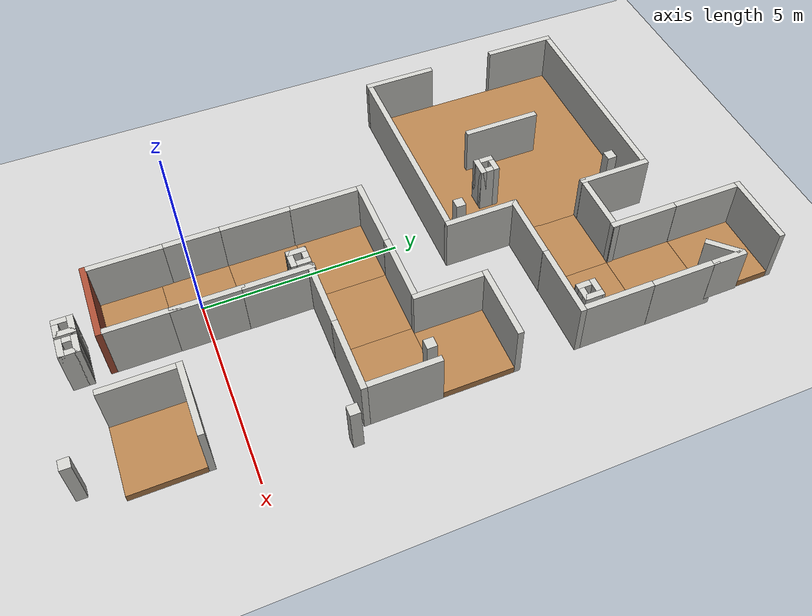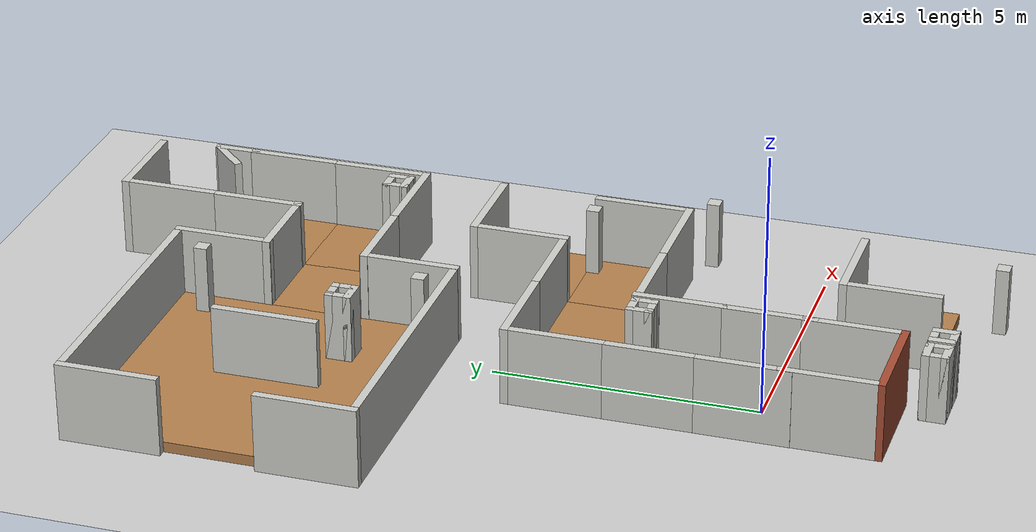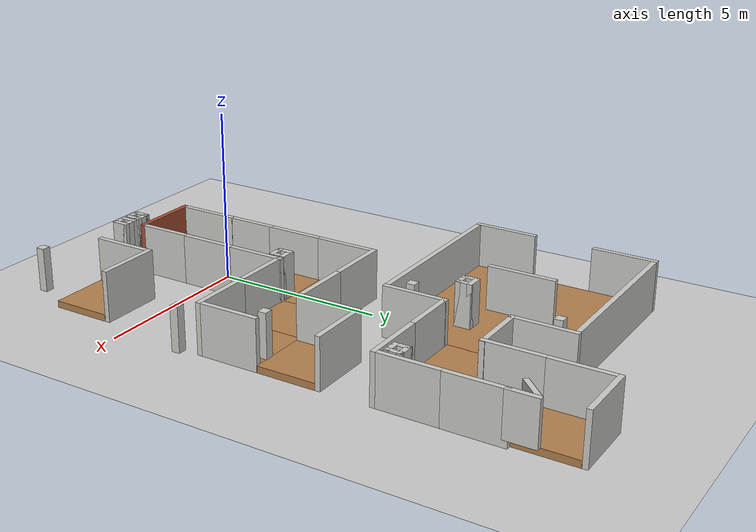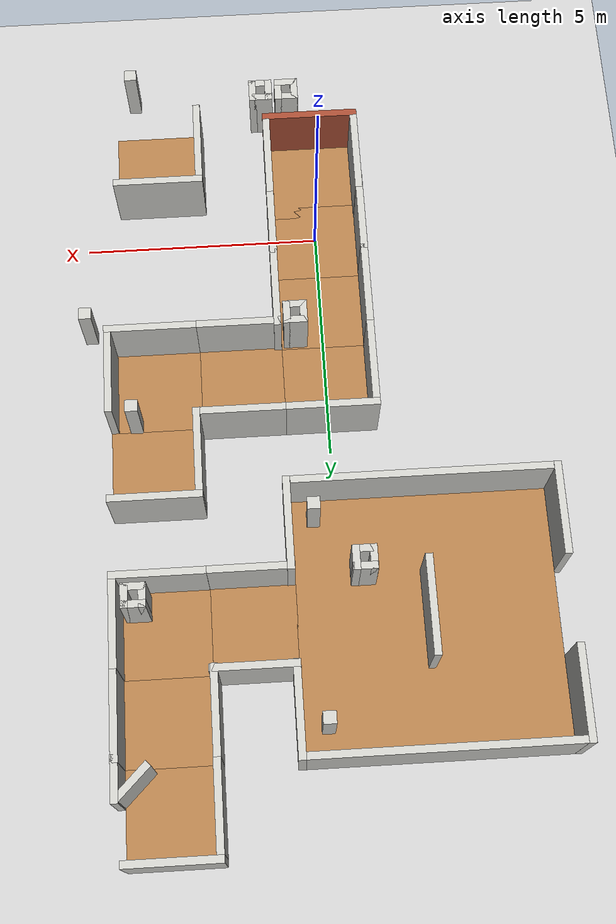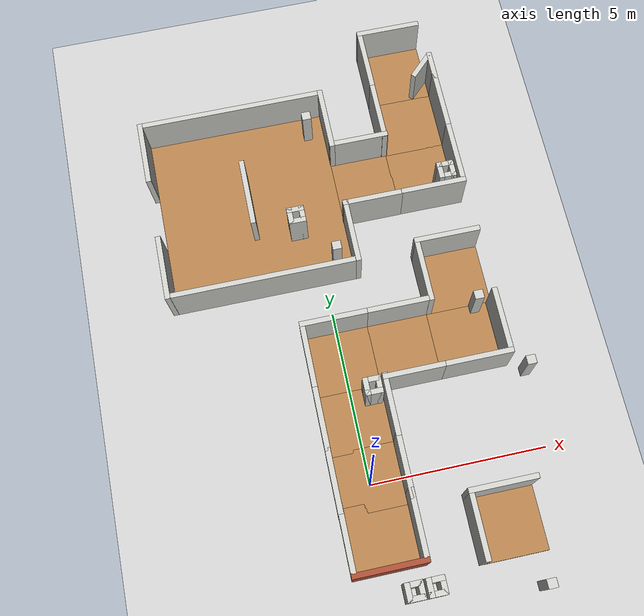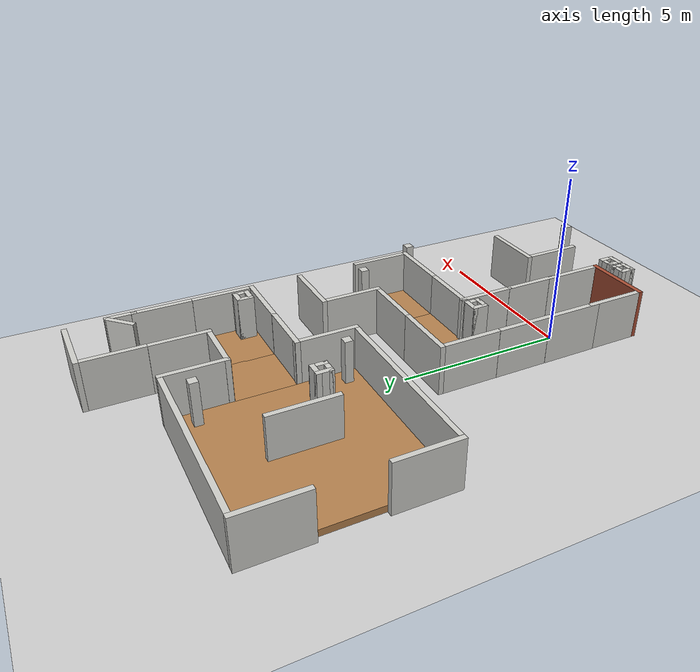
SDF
<sdf version="1.6">
 <world name="default">
  <model name="ground_plane">
   <static>1</static>
   <link name="link">
    <collision name="collision">
     <geometry><plane><normal>0 0 1</normal><size>100 100</size></plane></geometry>
     <surface><friction><ode><mu>100</mu><mu2>50</mu2></ode></friction></surface>
    </collision>
    <visual name="visual">
     <cast_shadows>0</cast_shadows>
     <geometry><plane><normal>0 0 1</normal><size>100 100</size></plane></geometry>
     <material>
      <script><uri>file://media/materials/scripts/gazebo.material</uri><name>Gazebo/Grey</name></script>
     </material>
    </visual>
   </link>
  </model>
  <model name="nerve_end">
   <pose>0 -1.42851 0 0 0 -3.14159</pose>
   <link name="Wall_0">
    <collision name="Wall_0_Collision">
     <geometry><box><size>1.76 1.75 0.2</size></box></geometry>
     <pose>0 0 0.1 0 -0 0</pose>
    </collision>
    <visual name="Wall_0_Visual">
     <pose>0 0 0.1 0 -0 0</pose>
     <geometry><box><size>1.76 1.75 0.2</size></box></geometry>
     <material>
      <script><uri>file://media/materials/scripts/gazebo.material</uri><name>Gazebo/Wood</name></script>
      <ambient>1 0.764706 0.305882 1</ambient>
     </material>
    </visual>
    <pose>-0.009 -0.064 0 0 -0 0</pose>
   </link>
   <link name="Wall_2">
    <collision name="Wall_2_Collision">
     <geometry><box><size>1.8 0.15 1.5</size></box></geometry>
     <pose>0 0 0.75 0 -0 0</pose>
    </collision>
    <visual name="Wall_2_Visual">
     <pose>0 0 0.75 0 -0 0</pose>
     <geometry><box><size>1.8 0.15 1.5</size></box></geometry>
     <material>
      <script><uri>file://media/materials/scripts/gazebo.material</uri><name>Gazebo/CeilingTiled</name></script>
      <ambient>1 0.764706 0.305882 1</ambient>
     </material>
    </visual>
    <pose>-0.95 -0.065 0 0 0 -1.5708</pose>
   </link>
   <link name="Wall_4">
    <collision name="Wall_4_Collision">
     <geometry><box><size>1.8 0.15 1.5</size></box></geometry>
     <pose>0 0 0.75 0 -0 0</pose>
    </collision>
    <visual name="Wall_4_Visual">
     <pose>0 0 0.75 0 -0 0</pose>
     <geometry><box><size>1.8 0.15 1.5</size></box></geometry>
     <material>
      <script><uri>file://media/materials/scripts/gazebo.material</uri><name>Gazebo/CeilingTiled</name></script>
      <ambient>1 0.764706 0.305882 1</ambient>
     </material>
    </visual>
    <pose>0.95 -0.065 0 0 0 -1.5708</pose>
   </link>
   <link name="Wall_6">
    <collision name="Wall_6_Collision">
     <geometry><box><size>2.05 0.15 1.5</size></box></geometry>
     <pose>0 0 0.75 0 -0 0</pose>
    </collision>
    <visual name="Wall_6_Visual">
     <pose>0 0 0.75 0 -0 0</pose>
     <geometry><box><size>2.05 0.15 1.5</size></box></geometry>
     <material>
      <script><uri>file://media/materials/scripts/gazebo.material</uri><name>Gazebo/Bricks</name></script>
      <ambient>0.996078 0.47451 0.0196078 1</ambient>
     </material>
    </visual>
    <pose>0 0.89 0 0 -0 0</pose>
   </link>
   <static>1</static>
  </model>
  <model name="nerve_straight_clone_0_clone_clone">
   <pose>0.002128 1.78513 0 0 -0 3.14159</pose>
   <link name="Wall_0">
    <collision name="Wall_0_Collision">
     <geometry><box><size>1.76 1.75 0.2</size></box></geometry>
     <pose>0 0 0.1 0 -0 0</pose>
    </collision>
    <visual name="Wall_0_Visual">
     <pose>0 0 0.1 0 -0 0</pose>
     <geometry><box><size>1.76 1.75 0.2</size></box></geometry>
     <material>
      <script><uri>file://media/materials/scripts/gazebo.material</uri><name>Gazebo/Wood</name></script>
      <ambient>1 0.764706 0.305882 1</ambient>
     </material>
    </visual>
    <pose>0.005 -0.002 0 0 -0 3.14159</pose>
   </link>
   <link name="Wall_2">
    <collision name="Wall_2_Collision">
     <geometry><box><size>1.75 0.15 1.5</size></box></geometry>
     <pose>0 0 0.75 0 -0 0</pose>
    </collision>
    <visual name="Wall_2_Visual">
     <pose>0 0 0.75 0 -0 0</pose>
     <geometry><box><size>1.75 0.15 1.5</size></box></geometry>
     <material>
      <script><uri>file://media/materials/scripts/gazebo.material</uri><name>Gazebo/CeilingTiled</name></script>
      <ambient>1 0.764706 0.305882 1</ambient>
     </material>
    </visual>
    <pose>-0.955 0.002 0 0 0 -1.5708</pose>
   </link>
   <link name="Wall_4">
    <collision name="Wall_4_Collision">
     <geometry><box><size>1.75 0.15 1.5</size></box></geometry>
     <pose>0 0 0.75 0 -0 0</pose>
    </collision>
    <visual name="Wall_4_Visual">
     <pose>0 0 0.75 0 -0 0</pose>
     <geometry><box><size>1.75 0.15 1.5</size></box></geometry>
     <material>
      <script><uri>file://media/materials/scripts/gazebo.material</uri><name>Gazebo/CeilingTiled</name></script>
      <ambient>1 0.764706 0.305882 1</ambient>
     </material>
    </visual>
    <pose>0.955 0.002 0 0 0 -1.5708</pose>
   </link>
   <static>1</static>
  </model>
  <model name="nerve_room_3x3_split">
   <pose>-1.72967 8.71628 0 0 0 -1.5708</pose>
   <link name="Wall_11">
    <collision name="Wall_11_Collision">
     <geometry><box><size>5.25 0.15 1.5</size></box></geometry>
     <pose>0 0 0.75 0 -0 0</pose>
    </collision>
    <visual name="Wall_11_Visual">
     <pose>0 0 0.75 0 -0 0</pose>
     <geometry><box><size>5.25 0.15 1.5</size></box></geometry>
     <material>
      <script><uri>file://media/materials/scripts/gazebo.material</uri><name>Gazebo/CeilingTiled</name></script>
      <ambient>1 0.764706 0.305882 1</ambient>
     </material>
    </visual>
    <pose>-2.69653 -0.003278 0 0 0 -1.5708</pose>
   </link>
   <link name="Wall_13">
    <collision name="Wall_13_Collision">
     <geometry><box><size>5.25 0.15 1.5</size></box></geometry>
     <pose>0 0 0.75 0 -0 0</pose>
    </collision>
    <visual name="Wall_13_Visual">
     <pose>0 0 0.75 0 -0 0</pose>
     <geometry><box><size>5.25 0.15 1.5</size></box></geometry>
     <material>
      <script><uri>file://media/materials/scripts/gazebo.material</uri><name>Gazebo/CeilingTiled</name></script>
      <ambient>1 0.764706 0.305882 1</ambient>
     </material>
    </visual>
    <pose>2.69688 -0.000452 0 0 0 -1.5708</pose>
   </link>
   <link name="Wall_15">
    <collision name="Wall_15_Collision">
     <geometry><box><size>1.9 0.15 1.5</size></box></geometry>
     <pose>0 0 0.75 0 -0 0</pose>
    </collision>
    <visual name="Wall_15_Visual">
     <pose>0 0 0.75 0 -0 0</pose>
     <geometry><box><size>1.9 0.15 1.5</size></box></geometry>
     <material>
      <script><uri>file://media/materials/scripts/gazebo.material</uri><name>Gazebo/CeilingTiled</name></script>
      <ambient>1 0.764706 0.305882 1</ambient>
     </material>
    </visual>
    <pose>-1.82279 -2.70217 0 0 -0 0</pose>
   </link>
   <link name="Wall_17">
    <collision name="Wall_17_Collision">
     <geometry><box><size>1.9 0.15 1.5</size></box></geometry>
     <pose>0 0 0.75 0 -0 0</pose>
    </collision>
    <visual name="Wall_17_Visual">
     <pose>0 0 0.75 0 -0 0</pose>
     <geometry><box><size>1.9 0.15 1.5</size></box></geometry>
     <material>
      <script><uri>file://media/materials/scripts/gazebo.material</uri><name>Gazebo/CeilingTiled</name></script>
      <ambient>1 0.764706 0.305882 1</ambient>
     </material>
    </visual>
    <pose>-1.82219 2.69878 0 0 -0 0</pose>
   </link>
   <link name="Wall_19">
    <collision name="Wall_19_Collision">
     <geometry><box><size>1.9 0.15 1.5</size></box></geometry>
     <pose>0 0 0.75 0 -0 0</pose>
    </collision>
    <visual name="Wall_19_Visual">
     <pose>0 0 0.75 0 -0 0</pose>
     <geometry><box><size>1.9 0.15 1.5</size></box></geometry>
     <material>
      <script><uri>file://media/materials/scripts/gazebo.material</uri><name>Gazebo/CeilingTiled</name></script>
      <ambient>1 0.764706 0.305882 1</ambient>
     </material>
    </visual>
    <pose>1.82194 2.70217 0 0 -0 0</pose>
   </link>
   <link name="Wall_21">
    <collision name="Wall_21_Collision">
     <geometry><box><size>1.9 0.15 1.5</size></box></geometry>
     <pose>0 0 0.75 0 -0 0</pose>
    </collision>
    <visual name="Wall_21_Visual">
     <pose>0 0 0.75 0 -0 0</pose>
     <geometry><box><size>1.9 0.15 1.5</size></box></geometry>
     <material>
      <script><uri>file://media/materials/scripts/gazebo.material</uri><name>Gazebo/CeilingTiled</name></script>
      <ambient>1 0.764706 0.305882 1</ambient>
     </material>
    </visual>
    <pose>1.82279 -2.70173 0 0 -0 0</pose>
   </link>
   <link name="Wall_23">
    <collision name="Wall_23_Collision">
     <geometry><box><size>2 0.15 1.5</size></box></geometry>
     <pose>0 0 0.75 0 -0 0</pose>
    </collision>
    <visual name="Wall_23_Visual">
     <pose>0 0 0.75 0 -0 0</pose>
     <geometry><box><size>2 0.15 1.5</size></box></geometry>
     <material>
      <script><uri>file://media/materials/scripts/gazebo.material</uri><name>Gazebo/CeilingTiled</name></script>
      <ambient>1 0.764706 0.305882 1</ambient>
     </material>
    </visual>
    <pose>0.033144 0.01482 0 0 -0 0</pose>
   </link>
   <link name="Wall_6">
    <collision name="Wall_6_Collision">
     <geometry><box><size>5.26 5.25 0.2</size></box></geometry>
     <pose>0 0 0.1 0 -0 0</pose>
    </collision>
    <visual name="Wall_6_Visual">
     <pose>0 0 0.1 0 -0 0</pose>
     <geometry><box><size>5.26 5.25 0.2</size></box></geometry>
     <material>
      <script><uri>file://media/materials/scripts/gazebo.material</uri><name>Gazebo/Wood</name></script>
      <ambient>1 0.764706 0.305882 1</ambient>
     </material>
    </visual>
    <pose>-0.001194 0.003047 0 0 -0 1.5708</pose>
   </link>
   <static>1</static>
  </model>
  <model name="nerve_corner">
   <pose>-0.067403 3.5803 0 0 -0 0</pose>
   <link name="Wall_0">
    <collision name="Wall_0_Collision">
     <geometry><box><size>1.76 1.75 0.2</size></box></geometry>
     <pose>0 0 0.1 0 -0 0</pose>
    </collision>
    <visual name="Wall_0_Visual">
     <pose>0 0 0.1 0 -0 0</pose>
     <geometry><box><size>1.76 1.75 0.2</size></box></geometry>
     <material>
      <script><uri>file://media/materials/scripts/gazebo.material</uri><name>Gazebo/Wood</name></script>
      <ambient>1 0.764706 0.305882 1</ambient>
     </material>
    </visual>
    <pose>0.077507 -0.077007 0 0 -0 3.14159</pose>
   </link>
   <link name="Wall_2">
    <collision name="Wall_2_Collision">
     <geometry><box><size>1.75 0.15 1.5</size></box></geometry>
     <pose>0 0 0.75 0 -0 0</pose>
    </collision>
    <visual name="Wall_2_Visual">
     <pose>0 0 0.75 0 -0 0</pose>
     <geometry><box><size>1.75 0.15 1.5</size></box></geometry>
     <material>
      <script><uri>file://media/materials/scripts/gazebo.material</uri><name>Gazebo/CeilingTiled</name></script>
      <ambient>1 0.764706 0.305882 1</ambient>
     </material>
    </visual>
    <pose>-0.882493 -0.073007 0 0 0 -1.5708</pose>
   </link>
   <link name="Wall_4">
    <collision name="Wall_4_Collision">
     <geometry><box><size>1.91042 0.15 1.5</size></box></geometry>
     <pose>0 0 0.75 0 -0 0</pose>
    </collision>
    <visual name="Wall_4_Visual">
     <pose>0 0 0.75 0 -0 0</pose>
     <geometry><box><size>1.91042 0.15 1.5</size></box></geometry>
     <material>
      <script><uri>file://media/materials/scripts/gazebo.material</uri><name>Gazebo/CeilingTiled</name></script>
      <ambient>1 0.764706 0.305882 1</ambient>
     </material>
    </visual>
    <pose>-0.002284 0.876825 0 0 -0 3.1414</pose>
   </link>
   <static>1</static>
  </model>
  <model name="nerve_straight_clone_0_clone_0">
   <pose>1.75611 3.50291 0 0 0 -1.5708</pose>
   <link name="Wall_0">
    <collision name="Wall_0_Collision">
     <geometry><box><size>1.76 1.75 0.2</size></box></geometry>
     <pose>0 0 0.1 0 -0 0</pose>
    </collision>
    <visual name="Wall_0_Visual">
     <pose>0 0 0.1 0 -0 0</pose>
     <geometry><box><size>1.76 1.75 0.2</size></box></geometry>
     <material>
      <script><uri>file://media/materials/scripts/gazebo.material</uri><name>Gazebo/Wood</name></script>
      <ambient>1 0.764706 0.305882 1</ambient>
     </material>
    </visual>
    <pose>0.005 -0.002 0 0 -0 3.14159</pose>
   </link>
   <link name="Wall_2">
    <collision name="Wall_2_Collision">
     <geometry><box><size>1.75 0.15 1.5</size></box></geometry>
     <pose>0 0 0.75 0 -0 0</pose>
    </collision>
    <visual name="Wall_2_Visual">
     <pose>0 0 0.75 0 -0 0</pose>
     <geometry><box><size>1.75 0.15 1.5</size></box></geometry>
     <material>
      <script><uri>file://media/materials/scripts/gazebo.material</uri><name>Gazebo/CeilingTiled</name></script>
      <ambient>1 0.764706 0.305882 1</ambient>
     </material>
    </visual>
    <pose>-0.955 0.002 0 0 0 -1.5708</pose>
   </link>
   <link name="Wall_4">
    <collision name="Wall_4_Collision">
     <geometry><box><size>1.75 0.15 1.5</size></box></geometry>
     <pose>0 0 0.75 0 -0 0</pose>
    </collision>
    <visual name="Wall_4_Visual">
     <pose>0 0 0.75 0 -0 0</pose>
     <geometry><box><size>1.75 0.15 1.5</size></box></geometry>
     <material>
      <script><uri>file://media/materials/scripts/gazebo.material</uri><name>Gazebo/CeilingTiled</name></script>
      <ambient>1 0.764706 0.305882 1</ambient>
     </material>
    </visual>
    <pose>0.955 0.002 0 0 0 -1.5708</pose>
   </link>
   <static>1</static>
  </model>
  <model name="nerve_corner_clone">
   <pose>3.58423 3.42479 0 0 0 -3.14159</pose>
   <link name="Wall_0">
    <collision name="Wall_0_Collision">
     <geometry><box><size>1.76 1.75 0.2</size></box></geometry>
     <pose>0 0 0.1 0 -0 0</pose>
    </collision>
    <visual name="Wall_0_Visual">
     <pose>0 0 0.1 0 -0 0</pose>
     <geometry><box><size>1.76 1.75 0.2</size></box></geometry>
     <material>
      <script><uri>file://media/materials/scripts/gazebo.material</uri><name>Gazebo/Wood</name></script>
      <ambient>1 0.764706 0.305882 1</ambient>
     </material>
    </visual>
    <pose>0.077507 -0.077007 0 0 -0 3.14159</pose>
   </link>
   <link name="Wall_2">
    <collision name="Wall_2_Collision">
     <geometry><box><size>1.75 0.15 1.5</size></box></geometry>
     <pose>0 0 0.75 0 -0 0</pose>
    </collision>
    <visual name="Wall_2_Visual">
     <pose>0 0 0.75 0 -0 0</pose>
     <geometry><box><size>1.75 0.15 1.5</size></box></geometry>
     <material>
      <script><uri>file://media/materials/scripts/gazebo.material</uri><name>Gazebo/CeilingTiled</name></script>
      <ambient>1 0.764706 0.305882 1</ambient>
     </material>
    </visual>
    <pose>-0.882493 -0.073007 0 0 0 -1.5708</pose>
   </link>
   <link name="Wall_4">
    <collision name="Wall_4_Collision">
     <geometry><box><size>1.91042 0.15 1.5</size></box></geometry>
     <pose>0 0 0.75 0 -0 0</pose>
    </collision>
    <visual name="Wall_4_Visual">
     <pose>0 0 0.75 0 -0 0</pose>
     <geometry><box><size>1.91042 0.15 1.5</size></box></geometry>
     <material>
      <script><uri>file://media/materials/scripts/gazebo.material</uri><name>Gazebo/CeilingTiled</name></script>
      <ambient>1 0.764706 0.305882 1</ambient>
     </material>
    </visual>
    <pose>-0.002284 0.876825 0 0 -0 3.1414</pose>
   </link>
   <static>1</static>
  </model>
  <model name="nerve_straight_clone_0_clone_0_clone">
   <pose>1.7644 8.71443 0 0 0 -1.5708</pose>
   <link name="Wall_0">
    <collision name="Wall_0_Collision">
     <geometry><box><size>1.76 1.75 0.2</size></box></geometry>
     <pose>0 0 0.1 0 -0 0</pose>
    </collision>
    <visual name="Wall_0_Visual">
     <pose>0 0 0.1 0 -0 0</pose>
     <geometry><box><size>1.76 1.75 0.2</size></box></geometry>
     <material>
      <script><uri>file://media/materials/scripts/gazebo.material</uri><name>Gazebo/Wood</name></script>
      <ambient>1 0.764706 0.305882 1</ambient>
     </material>
    </visual>
    <pose>0.005 -0.002 0 0 -0 3.14159</pose>
   </link>
   <link name="Wall_2">
    <collision name="Wall_2_Collision">
     <geometry><box><size>1.75 0.15 1.5</size></box></geometry>
     <pose>0 0 0.75 0 -0 0</pose>
    </collision>
    <visual name="Wall_2_Visual">
     <pose>0 0 0.75 0 -0 0</pose>
     <geometry><box><size>1.75 0.15 1.5</size></box></geometry>
     <material>
      <script><uri>file://media/materials/scripts/gazebo.material</uri><name>Gazebo/CeilingTiled</name></script>
      <ambient>1 0.764706 0.305882 1</ambient>
     </material>
    </visual>
    <pose>-0.955 0.002 0 0 0 -1.5708</pose>
   </link>
   <link name="Wall_4">
    <collision name="Wall_4_Collision">
     <geometry><box><size>1.75 0.15 1.5</size></box></geometry>
     <pose>0 0 0.75 0 -0 0</pose>
    </collision>
    <visual name="Wall_4_Visual">
     <pose>0 0 0.75 0 -0 0</pose>
     <geometry><box><size>1.75 0.15 1.5</size></box></geometry>
     <material>
      <script><uri>file://media/materials/scripts/gazebo.material</uri><name>Gazebo/CeilingTiled</name></script>
      <ambient>1 0.764706 0.305882 1</ambient>
     </material>
    </visual>
    <pose>0.955 0.002 0 0 0 -1.5708</pose>
   </link>
   <static>1</static>
  </model>
  <model name="nerve_corner_clone_clone_clone_clone_clone">
   <pose>3.33735 -1.74493 0 0 -0 4e-06</pose>
   <link name="Wall_0">
    <collision name="Wall_0_Collision">
     <geometry><box><size>1.76 1.75 0.2</size></box></geometry>
     <pose>0 0 0.1 0 -0 0</pose>
    </collision>
    <visual name="Wall_0_Visual">
     <pose>0 0 0.1 0 -0 0</pose>
     <geometry><box><size>1.76 1.75 0.2</size></box></geometry>
     <material>
      <script><uri>file://media/materials/scripts/gazebo.material</uri><name>Gazebo/Wood</name></script>
      <ambient>1 0.764706 0.305882 1</ambient>
     </material>
    </visual>
    <pose>0.077507 -0.077007 0 0 -0 3.14159</pose>
   </link>
   <link name="Wall_2">
    <collision name="Wall_2_Collision">
     <geometry><box><size>1.75 0.15 1.5</size></box></geometry>
     <pose>0 0 0.75 0 -0 0</pose>
    </collision>
    <visual name="Wall_2_Visual">
     <pose>0 0 0.75 0 -0 0</pose>
     <geometry><box><size>1.75 0.15 1.5</size></box></geometry>
     <material>
      <script><uri>file://media/materials/scripts/gazebo.material</uri><name>Gazebo/CeilingTiled</name></script>
      <ambient>1 0.764706 0.305882 1</ambient>
     </material>
    </visual>
    <pose>-0.882493 -0.073007 0 0 0 -1.5708</pose>
   </link>
   <link name="Wall_4">
    <collision name="Wall_4_Collision">
     <geometry><box><size>1.91042 0.15 1.5</size></box></geometry>
     <pose>0 0 0.75 0 -0 0</pose>
    </collision>
    <visual name="Wall_4_Visual">
     <pose>0 0 0.75 0 -0 0</pose>
     <geometry><box><size>1.91042 0.15 1.5</size></box></geometry>
     <material>
      <script><uri>file://media/materials/scripts/gazebo.material</uri><name>Gazebo/CeilingTiled</name></script>
      <ambient>1 0.764706 0.305882 1</ambient>
     </material>
    </visual>
    <pose>-0.002284 0.876825 0 0 -0 3.1414</pose>
   </link>
   <static>1</static>
  </model>
  <model name="nerve_corner_clone_0">
   <pose>3.5797 5.3278 0 0 -0 0</pose>
   <link name="Wall_0">
    <collision name="Wall_0_Collision">
     <geometry><box><size>1.76 1.75 0.2</size></box></geometry>
     <pose>0 0 0.1 0 -0 0</pose>
    </collision>
    <visual name="Wall_0_Visual">
     <pose>0 0 0.1 0 -0 0</pose>
     <geometry><box><size>1.76 1.75 0.2</size></box></geometry>
     <material>
      <script><uri>file://media/materials/scripts/gazebo.material</uri><name>Gazebo/Wood</name></script>
      <ambient>1 0.764706 0.305882 1</ambient>
     </material>
    </visual>
    <pose>0.077507 -0.077007 0 0 -0 3.14159</pose>
   </link>
   <link name="Wall_2">
    <collision name="Wall_2_Collision">
     <geometry><box><size>1.75 0.15 1.5</size></box></geometry>
     <pose>0 0 0.75 0 -0 0</pose>
    </collision>
    <visual name="Wall_2_Visual">
     <pose>0 0 0.75 0 -0 0</pose>
     <geometry><box><size>1.75 0.15 1.5</size></box></geometry>
     <material>
      <script><uri>file://media/materials/scripts/gazebo.material</uri><name>Gazebo/CeilingTiled</name></script>
      <ambient>1 0.764706 0.305882 1</ambient>
     </material>
    </visual>
    <pose>-0.882493 -0.073007 0 0 0 -1.5708</pose>
   </link>
   <link name="Wall_4">
    <collision name="Wall_4_Collision">
     <geometry><box><size>1.91042 0.15 1.5</size></box></geometry>
     <pose>0 0 0.75 0 -0 0</pose>
    </collision>
    <visual name="Wall_4_Visual">
     <pose>0 0 0.75 0 -0 0</pose>
     <geometry><box><size>1.91042 0.15 1.5</size></box></geometry>
     <material>
      <script><uri>file://media/materials/scripts/gazebo.material</uri><name>Gazebo/CeilingTiled</name></script>
      <ambient>1 0.764706 0.305882 1</ambient>
     </material>
    </visual>
    <pose>-0.002284 0.876825 0 0 -0 3.1414</pose>
   </link>
   <static>1</static>
  </model>
  <model name="nerve_straight_clone_0_clone_0_clone_clone">
   <pose>3.49978 10.4549 0 0 0 -4e-06</pose>
   <link name="Wall_0">
    <collision name="Wall_0_Collision">
     <geometry><box><size>1.76 1.75 0.2</size></box></geometry>
     <pose>0 0 0.1 0 -0 0</pose>
    </collision>
    <visual name="Wall_0_Visual">
     <pose>0 0 0.1 0 -0 0</pose>
     <geometry><box><size>1.76 1.75 0.2</size></box></geometry>
     <material>
      <script><uri>file://media/materials/scripts/gazebo.material</uri><name>Gazebo/Wood</name></script>
      <ambient>1 0.764706 0.305882 1</ambient>
     </material>
    </visual>
    <pose>0.005 -0.002 0 0 -0 3.14159</pose>
   </link>
   <link name="Wall_2">
    <collision name="Wall_2_Collision">
     <geometry><box><size>1.75 0.15 1.5</size></box></geometry>
     <pose>0 0 0.75 0 -0 0</pose>
    </collision>
    <visual name="Wall_2_Visual">
     <pose>0 0 0.75 0 -0 0</pose>
     <geometry><box><size>1.75 0.15 1.5</size></box></geometry>
     <material>
      <script><uri>file://media/materials/scripts/gazebo.material</uri><name>Gazebo/CeilingTiled</name></script>
      <ambient>1 0.764706 0.305882 1</ambient>
     </material>
    </visual>
    <pose>-0.955 0.002 0 0 0 -1.5708</pose>
   </link>
   <link name="Wall_4">
    <collision name="Wall_4_Collision">
     <geometry><box><size>1.75 0.15 1.5</size></box></geometry>
     <pose>0 0 0.75 0 -0 0</pose>
    </collision>
    <visual name="Wall_4_Visual">
     <pose>0 0 0.75 0 -0 0</pose>
     <geometry><box><size>1.75 0.15 1.5</size></box></geometry>
     <material>
      <script><uri>file://media/materials/scripts/gazebo.material</uri><name>Gazebo/CeilingTiled</name></script>
      <ambient>1 0.764706 0.305882 1</ambient>
     </material>
    </visual>
    <pose>0.955 0.002 0 0 0 -1.5708</pose>
   </link>
   <static>1</static>
  </model>
  <model name="nerve_corner_clone_0_clone_clone">
   <pose>3.56771 8.63968 0 0 -0 3.14159</pose>
   <link name="Wall_0">
    <collision name="Wall_0_Collision">
     <geometry><box><size>1.76 1.75 0.2</size></box></geometry>
     <pose>0 0 0.1 0 -0 0</pose>
    </collision>
    <visual name="Wall_0_Visual">
     <pose>0 0 0.1 0 -0 0</pose>
     <geometry><box><size>1.76 1.75 0.2</size></box></geometry>
     <material>
      <script><uri>file://media/materials/scripts/gazebo.material</uri><name>Gazebo/Wood</name></script>
      <ambient>1 0.764706 0.305882 1</ambient>
     </material>
    </visual>
    <pose>0.077507 -0.077007 0 0 -0 3.14159</pose>
   </link>
   <link name="Wall_2">
    <collision name="Wall_2_Collision">
     <geometry><box><size>1.75 0.15 1.5</size></box></geometry>
     <pose>0 0 0.75 0 -0 0</pose>
    </collision>
    <visual name="Wall_2_Visual">
     <pose>0 0 0.75 0 -0 0</pose>
     <geometry><box><size>1.75 0.15 1.5</size></box></geometry>
     <material>
      <script><uri>file://media/materials/scripts/gazebo.material</uri><name>Gazebo/CeilingTiled</name></script>
      <ambient>1 0.764706 0.305882 1</ambient>
     </material>
    </visual>
    <pose>-0.882493 -0.073007 0 0 0 -1.5708</pose>
   </link>
   <link name="Wall_4">
    <collision name="Wall_4_Collision">
     <geometry><box><size>1.91042 0.15 1.5</size></box></geometry>
     <pose>0 0 0.75 0 -0 0</pose>
    </collision>
    <visual name="Wall_4_Visual">
     <pose>0 0 0.75 0 -0 0</pose>
     <geometry><box><size>1.91042 0.15 1.5</size></box></geometry>
     <material>
      <script><uri>file://media/materials/scripts/gazebo.material</uri><name>Gazebo/CeilingTiled</name></script>
      <ambient>1 0.764706 0.305882 1</ambient>
     </material>
    </visual>
    <pose>-0.002284 0.876825 0 0 -0 3.1414</pose>
   </link>
   <static>1</static>
  </model>
  <model name="nerve_corner_clone_0_clone_clone_0">
   <pose>3.43317 12.2725 0 0 0 -4e-06</pose>
   <link name="Wall_0">
    <collision name="Wall_0_Collision">
     <geometry><box><size>1.76 1.75 0.2</size></box></geometry>
     <pose>0 0 0.1 0 -0 0</pose>
    </collision>
    <visual name="Wall_0_Visual">
     <pose>0 0 0.1 0 -0 0</pose>
     <geometry><box><size>1.76 1.75 0.2</size></box></geometry>
     <material>
      <script><uri>file://media/materials/scripts/gazebo.material</uri><name>Gazebo/Wood</name></script>
      <ambient>1 0.764706 0.305882 1</ambient>
     </material>
    </visual>
    <pose>0.077507 -0.077007 0 0 -0 3.14159</pose>
   </link>
   <link name="Wall_2">
    <collision name="Wall_2_Collision">
     <geometry><box><size>1.75 0.15 1.5</size></box></geometry>
     <pose>0 0 0.75 0 -0 0</pose>
    </collision>
    <visual name="Wall_2_Visual">
     <pose>0 0 0.75 0 -0 0</pose>
     <geometry><box><size>1.75 0.15 1.5</size></box></geometry>
     <material>
      <script><uri>file://media/materials/scripts/gazebo.material</uri><name>Gazebo/CeilingTiled</name></script>
      <ambient>1 0.764706 0.305882 1</ambient>
     </material>
    </visual>
    <pose>-0.882493 -0.073007 0 0 0 -1.5708</pose>
   </link>
   <link name="Wall_4">
    <collision name="Wall_4_Collision">
     <geometry><box><size>1.91042 0.15 1.5</size></box></geometry>
     <pose>0 0 0.75 0 -0 0</pose>
    </collision>
    <visual name="Wall_4_Visual">
     <pose>0 0 0.75 0 -0 0</pose>
     <geometry><box><size>1.91042 0.15 1.5</size></box></geometry>
     <material>
      <script><uri>file://media/materials/scripts/gazebo.material</uri><name>Gazebo/CeilingTiled</name></script>
      <ambient>1 0.764706 0.305882 1</ambient>
     </material>
    </visual>
    <pose>-0.002284 0.876825 0 0 -0 3.1414</pose>
   </link>
   <static>1</static>
  </model>
  <model name="nerve_straight_clone_0_clone_clone_clone_0">
   <pose>-0.001388 0.12298 0 0 -0 3.14159</pose>
   <link name="Wall_0">
    <collision name="Wall_0_Collision">
     <geometry><box><size>1.76 1.75 0.2</size></box></geometry>
     <pose>0 0 0.1 0 -0 0</pose>
    </collision>
    <visual name="Wall_0_Visual">
     <pose>0 0 0.1 0 -0 0</pose>
     <geometry><box><size>1.76 1.75 0.2</size></box></geometry>
     <material>
      <script><uri>file://media/materials/scripts/gazebo.material</uri><name>Gazebo/Wood</name></script>
      <ambient>1 0.764706 0.305882 1</ambient>
     </material>
    </visual>
    <pose>0.005 -0.002 0 0 -0 3.14159</pose>
   </link>
   <link name="Wall_2">
    <collision name="Wall_2_Collision">
     <geometry><box><size>1.75 0.15 1.5</size></box></geometry>
     <pose>0 0 0.75 0 -0 0</pose>
    </collision>
    <visual name="Wall_2_Visual">
     <pose>0 0 0.75 0 -0 0</pose>
     <geometry><box><size>1.75 0.15 1.5</size></box></geometry>
     <material>
      <script><uri>file://media/materials/scripts/gazebo.material</uri><name>Gazebo/CeilingTiled</name></script>
      <ambient>1 0.764706 0.305882 1</ambient>
     </material>
    </visual>
    <pose>-0.955 0.002 0 0 0 -1.5708</pose>
   </link>
   <link name="Wall_4">
    <collision name="Wall_4_Collision">
     <geometry><box><size>1.75 0.15 1.5</size></box></geometry>
     <pose>0 0 0.75 0 -0 0</pose>
    </collision>
    <visual name="Wall_4_Visual">
     <pose>0 0 0.75 0 -0 0</pose>
     <geometry><box><size>1.75 0.15 1.5</size></box></geometry>
     <material>
      <script><uri>file://media/materials/scripts/gazebo.material</uri><name>Gazebo/CeilingTiled</name></script>
      <ambient>1 0.764706 0.305882 1</ambient>
     </material>
    </visual>
    <pose>0.955 0.002 0 0 0 -1.5708</pose>
   </link>
   <static>1</static>
  </model>
  <model name="nerve_obs_squarepillar_large_clone_35">
   <pose>-0.476011 7.67869 0.2 0 -0 0</pose>
   <link name="Wall_31">
    <collision name="Wall_31_Collision">
     <geometry><box><size>0.5 0.15 1.3</size></box></geometry>
     <pose>0 0 0.65 0 -0 0</pose>
    </collision>
    <visual name="Wall_31_Visual">
     <pose>0 0 0.65 0 -0 0</pose>
     <geometry><box><size>0.5 0.15 1.3</size></box></geometry>
     <material>
      <script><uri>file://media/materials/scripts/gazebo.material</uri><name>Gazebo/CeilingTiled</name></script>
      <ambient>1 0.764706 0.305882 1</ambient>
     </material>
    </visual>
    <pose>-0.175 0 0 0 0 -1.5708</pose>
   </link>
   <link name="Wall_32">
    <collision name="Wall_32_Collision">
     <geometry><box><size>0.5 0.15 1.3</size></box></geometry>
     <pose>0 0 0.65 0 -0 0</pose>
    </collision>
    <visual name="Wall_32_Visual">
     <pose>0 0 0.65 0 -0 0</pose>
     <geometry><box><size>0.5 0.15 1.3</size></box></geometry>
     <material>
      <script><uri>file://media/materials/scripts/gazebo.material</uri><name>Gazebo/CeilingTiled</name></script>
      <ambient>1 0.764706 0.305882 1</ambient>
     </material>
    </visual>
    <pose>0 -0.175 0 0 -0 0</pose>
   </link>
   <link name="Wall_33">
    <collision name="Wall_33_Collision">
     <geometry><box><size>0.5 0.15 1.3</size></box></geometry>
     <pose>0 0 0.65 0 -0 0</pose>
    </collision>
    <visual name="Wall_33_Visual">
     <pose>0 0 0.65 0 -0 0</pose>
     <geometry><box><size>0.5 0.15 1.3</size></box></geometry>
     <material>
      <script><uri>file://media/materials/scripts/gazebo.material</uri><name>Gazebo/CeilingTiled</name></script>
      <ambient>1 0.764706 0.305882 1</ambient>
     </material>
    </visual>
    <pose>0.175 0 0 0 -0 1.5708</pose>
   </link>
   <link name="Wall_34">
    <collision name="Wall_34_Collision">
     <geometry><box><size>0.5 0.15 1.3</size></box></geometry>
     <pose>0 0 0.65 0 -0 0</pose>
    </collision>
    <visual name="Wall_34_Visual">
     <pose>0 0 0.65 0 -0 0</pose>
     <geometry><box><size>0.5 0.15 1.3</size></box></geometry>
     <material>
      <script><uri>file://media/materials/scripts/gazebo.material</uri><name>Gazebo/CeilingTiled</name></script>
      <ambient>1 0.764706 0.305882 1</ambient>
     </material>
    </visual>
    <pose>0 0.175 0 0 -0 3.14159</pose>
   </link>
   <static>1</static>
  </model>
  <model name="nerve_obs_squarepillar_large_clone_41">
   <pose>0.581824 2.37633 0.2 0 -0 0</pose>
   <link name="Wall_31">
    <collision name="Wall_31_Collision">
     <geometry><box><size>0.5 0.15 1.3</size></box></geometry>
     <pose>0 0 0.65 0 -0 0</pose>
    </collision>
    <visual name="Wall_31_Visual">
     <pose>0 0 0.65 0 -0 0</pose>
     <geometry><box><size>0.5 0.15 1.3</size></box></geometry>
     <material>
      <script><uri>file://media/materials/scripts/gazebo.material</uri><name>Gazebo/CeilingTiled</name></script>
      <ambient>1 0.764706 0.305882 1</ambient>
     </material>
    </visual>
    <pose>-0.175 0 0 0 0 -1.5708</pose>
   </link>
   <link name="Wall_32">
    <collision name="Wall_32_Collision">
     <geometry><box><size>0.5 0.15 1.3</size></box></geometry>
     <pose>0 0 0.65 0 -0 0</pose>
    </collision>
    <visual name="Wall_32_Visual">
     <pose>0 0 0.65 0 -0 0</pose>
     <geometry><box><size>0.5 0.15 1.3</size></box></geometry>
     <material>
      <script><uri>file://media/materials/scripts/gazebo.material</uri><name>Gazebo/CeilingTiled</name></script>
      <ambient>1 0.764706 0.305882 1</ambient>
     </material>
    </visual>
    <pose>0 -0.175 0 0 -0 0</pose>
   </link>
   <link name="Wall_33">
    <collision name="Wall_33_Collision">
     <geometry><box><size>0.5 0.15 1.3</size></box></geometry>
     <pose>0 0 0.65 0 -0 0</pose>
    </collision>
    <visual name="Wall_33_Visual">
     <pose>0 0 0.65 0 -0 0</pose>
     <geometry><box><size>0.5 0.15 1.3</size></box></geometry>
     <material>
      <script><uri>file://media/materials/scripts/gazebo.material</uri><name>Gazebo/CeilingTiled</name></script>
      <ambient>1 0.764706 0.305882 1</ambient>
     </material>
    </visual>
    <pose>0.175 0 0 0 -0 1.5708</pose>
   </link>
   <link name="Wall_34">
    <collision name="Wall_34_Collision">
     <geometry><box><size>0.5 0.15 1.3</size></box></geometry>
     <pose>0 0 0.65 0 -0 0</pose>
    </collision>
    <visual name="Wall_34_Visual">
     <pose>0 0 0.65 0 -0 0</pose>
     <geometry><box><size>0.5 0.15 1.3</size></box></geometry>
     <material>
      <script><uri>file://media/materials/scripts/gazebo.material</uri><name>Gazebo/CeilingTiled</name></script>
      <ambient>1 0.764706 0.305882 1</ambient>
     </material>
    </visual>
    <pose>0 0.175 0 0 -0 3.14159</pose>
   </link>
   <static>1</static>
  </model>
  <model name="nerve_obs_squarepillar_large_clone_42">
   <pose>4.04615 8.17816 0.2 0 -0 0</pose>
   <link name="Wall_31">
    <collision name="Wall_31_Collision">
     <geometry><box><size>0.5 0.15 1.3</size></box></geometry>
     <pose>0 0 0.65 0 -0 0</pose>
    </collision>
    <visual name="Wall_31_Visual">
     <pose>0 0 0.65 0 -0 0</pose>
     <geometry><box><size>0.5 0.15 1.3</size></box></geometry>
     <material>
      <script><uri>file://media/materials/scripts/gazebo.material</uri><name>Gazebo/CeilingTiled</name></script>
      <ambient>1 0.764706 0.305882 1</ambient>
     </material>
    </visual>
    <pose>-0.175 0 0 0 0 -1.5708</pose>
   </link>
   <link name="Wall_32">
    <collision name="Wall_32_Collision">
     <geometry><box><size>0.5 0.15 1.3</size></box></geometry>
     <pose>0 0 0.65 0 -0 0</pose>
    </collision>
    <visual name="Wall_32_Visual">
     <pose>0 0 0.65 0 -0 0</pose>
     <geometry><box><size>0.5 0.15 1.3</size></box></geometry>
     <material>
      <script><uri>file://media/materials/scripts/gazebo.material</uri><name>Gazebo/CeilingTiled</name></script>
      <ambient>1 0.764706 0.305882 1</ambient>
     </material>
    </visual>
    <pose>0 -0.175 0 0 -0 0</pose>
   </link>
   <link name="Wall_33">
    <collision name="Wall_33_Collision">
     <geometry><box><size>0.5 0.15 1.3</size></box></geometry>
     <pose>0 0 0.65 0 -0 0</pose>
    </collision>
    <visual name="Wall_33_Visual">
     <pose>0 0 0.65 0 -0 0</pose>
     <geometry><box><size>0.5 0.15 1.3</size></box></geometry>
     <material>
      <script><uri>file://media/materials/scripts/gazebo.material</uri><name>Gazebo/CeilingTiled</name></script>
      <ambient>1 0.764706 0.305882 1</ambient>
     </material>
    </visual>
    <pose>0.175 0 0 0 -0 1.5708</pose>
   </link>
   <link name="Wall_34">
    <collision name="Wall_34_Collision">
     <geometry><box><size>0.5 0.15 1.3</size></box></geometry>
     <pose>0 0 0.65 0 -0 0</pose>
    </collision>
    <visual name="Wall_34_Visual">
     <pose>0 0 0.65 0 -0 0</pose>
     <geometry><box><size>0.5 0.15 1.3</size></box></geometry>
     <material>
      <script><uri>file://media/materials/scripts/gazebo.material</uri><name>Gazebo/CeilingTiled</name></script>
      <ambient>1 0.764706 0.305882 1</ambient>
     </material>
    </visual>
    <pose>0 0.175 0 0 -0 3.14159</pose>
   </link>
   <static>1</static>
  </model>
  <model name="nerve_obs_squarepillar_large_clone_46">
   <pose>0.475062 -2.99273 0.2 0 -0 0</pose>
   <link name="Wall_31">
    <collision name="Wall_31_Collision">
     <geometry><box><size>0.5 0.15 1.3</size></box></geometry>
     <pose>0 0 0.65 0 -0 0</pose>
    </collision>
    <visual name="Wall_31_Visual">
     <pose>0 0 0.65 0 -0 0</pose>
     <geometry><box><size>0.5 0.15 1.3</size></box></geometry>
     <material>
      <script><uri>file://media/materials/scripts/gazebo.material</uri><name>Gazebo/CeilingTiled</name></script>
      <ambient>1 0.764706 0.305882 1</ambient>
     </material>
    </visual>
    <pose>-0.175 0 0 0 0 -1.5708</pose>
   </link>
   <link name="Wall_32">
    <collision name="Wall_32_Collision">
     <geometry><box><size>0.5 0.15 1.3</size></box></geometry>
     <pose>0 0 0.65 0 -0 0</pose>
    </collision>
    <visual name="Wall_32_Visual">
     <pose>0 0 0.65 0 -0 0</pose>
     <geometry><box><size>0.5 0.15 1.3</size></box></geometry>
     <material>
      <script><uri>file://media/materials/scripts/gazebo.material</uri><name>Gazebo/CeilingTiled</name></script>
      <ambient>1 0.764706 0.305882 1</ambient>
     </material>
    </visual>
    <pose>0 -0.175 0 0 -0 0</pose>
   </link>
   <link name="Wall_33">
    <collision name="Wall_33_Collision">
     <geometry><box><size>0.5 0.15 1.3</size></box></geometry>
     <pose>0 0 0.65 0 -0 0</pose>
    </collision>
    <visual name="Wall_33_Visual">
     <pose>0 0 0.65 0 -0 0</pose>
     <geometry><box><size>0.5 0.15 1.3</size></box></geometry>
     <material>
      <script><uri>file://media/materials/scripts/gazebo.material</uri><name>Gazebo/CeilingTiled</name></script>
      <ambient>1 0.764706 0.305882 1</ambient>
     </material>
    </visual>
    <pose>0.175 0 0 0 -0 1.5708</pose>
   </link>
   <link name="Wall_34">
    <collision name="Wall_34_Collision">
     <geometry><box><size>0.5 0.15 1.3</size></box></geometry>
     <pose>0 0 0.65 0 -0 0</pose>
    </collision>
    <visual name="Wall_34_Visual">
     <pose>0 0 0.65 0 -0 0</pose>
     <geometry><box><size>0.5 0.15 1.3</size></box></geometry>
     <material>
      <script><uri>file://media/materials/scripts/gazebo.material</uri><name>Gazebo/CeilingTiled</name></script>
      <ambient>1 0.764706 0.305882 1</ambient>
     </material>
    </visual>
    <pose>0 0.175 0 0 -0 3.14159</pose>
   </link>
   <static>1</static>
  </model>
  <model name="nerve_obs_squarepillar_large_clone_47">
   <pose>1.03508 -2.99361 0.2 0 -0 0</pose>
   <link name="Wall_31">
    <collision name="Wall_31_Collision">
     <geometry><box><size>0.5 0.15 1.3</size></box></geometry>
     <pose>0 0 0.65 0 -0 0</pose>
    </collision>
    <visual name="Wall_31_Visual">
     <pose>0 0 0.65 0 -0 0</pose>
     <geometry><box><size>0.5 0.15 1.3</size></box></geometry>
     <material>
      <script><uri>file://media/materials/scripts/gazebo.material</uri><name>Gazebo/CeilingTiled</name></script>
      <ambient>1 0.764706 0.305882 1</ambient>
     </material>
    </visual>
    <pose>-0.175 0 0 0 0 -1.5708</pose>
   </link>
   <link name="Wall_32">
    <collision name="Wall_32_Collision">
     <geometry><box><size>0.5 0.15 1.3</size></box></geometry>
     <pose>0 0 0.65 0 -0 0</pose>
    </collision>
    <visual name="Wall_32_Visual">
     <pose>0 0 0.65 0 -0 0</pose>
     <geometry><box><size>0.5 0.15 1.3</size></box></geometry>
     <material>
      <script><uri>file://media/materials/scripts/gazebo.material</uri><name>Gazebo/CeilingTiled</name></script>
      <ambient>1 0.764706 0.305882 1</ambient>
     </material>
    </visual>
    <pose>0 -0.175 0 0 -0 0</pose>
   </link>
   <link name="Wall_33">
    <collision name="Wall_33_Collision">
     <geometry><box><size>0.5 0.15 1.3</size></box></geometry>
     <pose>0 0 0.65 0 -0 0</pose>
    </collision>
    <visual name="Wall_33_Visual">
     <pose>0 0 0.65 0 -0 0</pose>
     <geometry><box><size>0.5 0.15 1.3</size></box></geometry>
     <material>
      <script><uri>file://media/materials/scripts/gazebo.material</uri><name>Gazebo/CeilingTiled</name></script>
      <ambient>1 0.764706 0.305882 1</ambient>
     </material>
    </visual>
    <pose>0.175 0 0 0 -0 1.5708</pose>
   </link>
   <link name="Wall_34">
    <collision name="Wall_34_Collision">
     <geometry><box><size>0.5 0.15 1.3</size></box></geometry>
     <pose>0 0 0.65 0 -0 0</pose>
    </collision>
    <visual name="Wall_34_Visual">
     <pose>0 0 0.65 0 -0 0</pose>
     <geometry><box><size>0.5 0.15 1.3</size></box></geometry>
     <material>
      <script><uri>file://media/materials/scripts/gazebo.material</uri><name>Gazebo/CeilingTiled</name></script>
      <ambient>1 0.764706 0.305882 1</ambient>
     </material>
    </visual>
    <pose>0 0.175 0 0 -0 3.14159</pose>
   </link>
   <static>1</static>
  </model>
  <model name="nerve_obs_squarepillar_small_clone_33">
   <pose>4.92237 2.17197 0.2 0 -0 0</pose>
   <link name="Wall_40">
    <collision name="Wall_40_Collision">
     <geometry><box><size>0.26 0.25 1.3</size></box></geometry>
     <pose>0 0 0.65 0 -0 0</pose>
    </collision>
    <visual name="Wall_40_Visual">
     <pose>0 0 0.65 0 -0 0</pose>
     <geometry><box><size>0.26 0.25 1.3</size></box></geometry>
     <material>
      <script><uri>file://media/materials/scripts/gazebo.material</uri><name>Gazebo/CeilingTiled</name></script>
      <ambient>1 0.764706 0.305882 1</ambient>
     </material>
    </visual>
   </link>
   <static>1</static>
  </model>
  <model name="nerve_obs_squarepillar_small_clone_37">
   <pose>4.00466 4.26931 0.2 0 -0 0</pose>
   <link name="Wall_40">
    <collision name="Wall_40_Collision">
     <geometry><box><size>0.26 0.25 1.3</size></box></geometry>
     <pose>0 0 0.65 0 -0 0</pose>
    </collision>
    <visual name="Wall_40_Visual">
     <pose>0 0 0.65 0 -0 0</pose>
     <geometry><box><size>0.26 0.25 1.3</size></box></geometry>
     <material>
      <script><uri>file://media/materials/scripts/gazebo.material</uri><name>Gazebo/CeilingTiled</name></script>
      <ambient>1 0.764706 0.305882 1</ambient>
     </material>
    </visual>
   </link>
   <static>1</static>
  </model>
  <model name="nerve_obs_squarepillar_small_clone_38">
   <pose>3.87692 -3.53014 0.2 0 -0 0</pose>
   <link name="Wall_40">
    <collision name="Wall_40_Collision">
     <geometry><box><size>0.26 0.25 1.3</size></box></geometry>
     <pose>0 0 0.65 0 -0 0</pose>
    </collision>
    <visual name="Wall_40_Visual">
     <pose>0 0 0.65 0 -0 0</pose>
     <geometry><box><size>0.26 0.25 1.3</size></box></geometry>
     <material>
      <script><uri>file://media/materials/scripts/gazebo.material</uri><name>Gazebo/CeilingTiled</name></script>
      <ambient>1 0.764706 0.305882 1</ambient>
     </material>
    </visual>
   </link>
   <static>1</static>
  </model>
  <model name="nerve_obs_squarepillar_small_clone_42">
   <pose>0.457107 6.5268 0.2 0 -0 0</pose>
   <link name="Wall_40">
    <collision name="Wall_40_Collision">
     <geometry><box><size>0.26 0.25 1.3</size></box></geometry>
     <pose>0 0 0.65 0 -0 0</pose>
    </collision>
    <visual name="Wall_40_Visual">
     <pose>0 0 0.65 0 -0 0</pose>
     <geometry><box><size>0.26 0.25 1.3</size></box></geometry>
     <material>
      <script><uri>file://media/materials/scripts/gazebo.material</uri><name>Gazebo/CeilingTiled</name></script>
      <ambient>1 0.764706 0.305882 1</ambient>
     </material>
    </visual>
   </link>
   <static>1</static>
  </model>
  <model name="nerve_obs_squarepillar_small_clone_40">
   <pose>0.41606 10.7304 0.2 0 -0 0</pose>
   <link name="Wall_40">
    <collision name="Wall_40_Collision">
     <geometry><box><size>0.26 0.25 1.3</size></box></geometry>
     <pose>0 0 0.65 0 -0 0</pose>
    </collision>
    <visual name="Wall_40_Visual">
     <pose>0 0 0.65 0 -0 0</pose>
     <geometry><box><size>0.26 0.25 1.3</size></box></geometry>
     <material>
      <script><uri>file://media/materials/scripts/gazebo.material</uri><name>Gazebo/CeilingTiled</name></script>
      <ambient>1 0.764706 0.305882 1</ambient>
     </material>
    </visual>
   </link>
   <static>1</static>
  </model>
  <model name="nerve_obs_wall_short">
   <pose>4.45785 11.6203 0.2 0 0 -1.5708</pose>
   <link name="Wall_21">
    <collision name="Wall_21_Collision">
     <geometry><box><size>0.9 0.15 1.3</size></box></geometry>
     <pose>0 0 0.65 0 -0 0</pose>
    </collision>
    <visual name="Wall_21_Visual">
     <pose>0 0 0.65 0 -0 0</pose>
     <geometry><box><size>0.9 0.15 1.3</size></box></geometry>
     <material>
      <script><uri>file://media/materials/scripts/gazebo.material</uri><name>Gazebo/CeilingTiled</name></script>
      <ambient>1 0.764706 0.305882 1</ambient>
     </material>
    </visual>
   </link>
   <static>1</static>
  </model>
  <model name="nerve_obs_wall_short_clone_0">
   <pose>4.13725 11.6902 0.2 0 0 -2.3562</pose>
   <link name="Wall_21">
    <collision name="Wall_21_Collision">
     <geometry><box><size>0.9 0.15 1.3</size></box></geometry>
     <pose>0 0 0.65 0 -0 0</pose>
    </collision>
    <visual name="Wall_21_Visual">
     <pose>0 0 0.65 0 -0 0</pose>
     <geometry><box><size>0.9 0.15 1.3</size></box></geometry>
     <material>
      <script><uri>file://media/materials/scripts/gazebo.material</uri><name>Gazebo/CeilingTiled</name></script>
      <ambient>1 0.764706 0.305882 1</ambient>
     </material>
    </visual>
   </link>
   <static>1</static>
  </model>
 </world>
</sdf>
